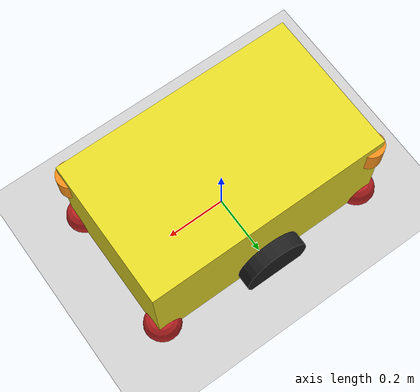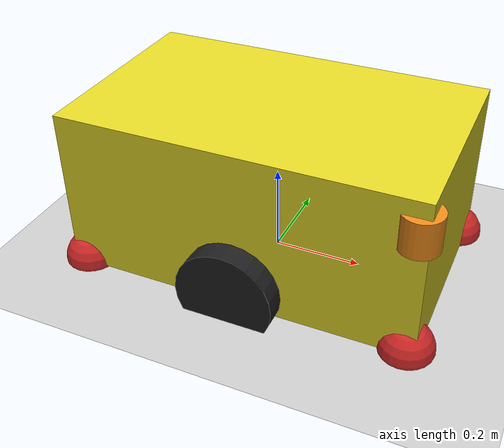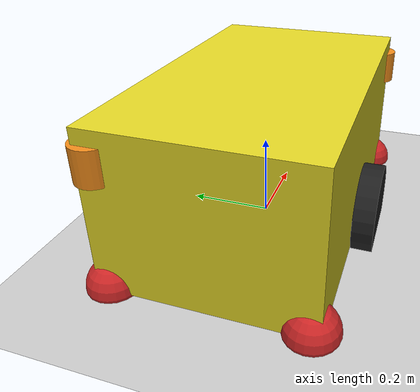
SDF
<sdf version="1.4">
 <world name="default">
  <include><uri>model://ground_plane</uri></include>
  <include><uri>model://sun</uri></include>
  <include><uri>model://delta_amr</uri></include>
 </world>
</sdf>

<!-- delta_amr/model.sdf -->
<sdf version='1.4'>
  <model name="my_robot">

      <link name='base_link'>
        <pose>0 0 0.19 0 0 0</pose>
        <inertial>
          <mass>0.5</mass>
          <inertia>
            <ixx>0.01530416</ixx>
            <ixy>0</ixy>
            <ixz>0</ixz>
            <iyy>0.03237083</iyy>
            <iyz>0</iyz>
            <izz>0.03626666</izz>
          </inertia>
        </inertial>
        <visual name='visual'>
          <geometry>
            <box>
              <size>0.8 0.48 0.37</size>
            </box>
          </geometry>
          <material>
            <script>
               <uri>file://media/materials/scripts/gazebo.material</uri>
               <name>Gazebo/Yellow</name>
            </script>
          </material>
        </visual>
        <collision name='collision'>
          <geometry>
            <box>
              <size>0.8 0.48 0.37</size>
            </box>
          </geometry>
        </collision>
      </link>

      <link name='left_wheel'>
        <pose>0 0.265 0.055 0 1.5707 1.5707</pose>
        <inertial>
          <mass>0.1</mass>
          <inertia>
            <ixx>0.0003233</ixx>
            <ixy>0</ixy>
            <ixz>0</ixz>
            <iyy>0.0003233</iyy>
            <iyz>0</iyz>
            <izz>0.000605</izz>
          </inertia>
        </inertial>
        <visual name='visual'>
          <geometry>
            <cylinder>
              <radius>0.11</radius>
              <length>.05</length>
            </cylinder>
          </geometry>
          <material>
            <script>
               <uri>file://media/materials/scripts/gazebo.material</uri>
               <name>Gazebo/Black</name>
            </script>
          </material>
        </visual>
        <collision name='collision'>
          <geometry>
            <cylinder>
              <radius>0.11</radius>
              <length>.05</length>
            </cylinder>
          </geometry>
          <surface>
            <friction>
              <ode>
                <mu>1</mu>
                <mu2>1</mu2>
                <slip1>0</slip1>
                <slip2>0</slip2>
              </ode>
            </friction>
            <contact>
              <ode>
                <soft_cfm>0</soft_cfm>
                <soft_erp>0.2</soft_erp>
                <kp>1e+13</kp>
                <kd>1</kd>
                <max_vel>0.01</max_vel>
                <min_depth>0.01</min_depth>
              </ode>
            </contact>
          </surface>
        </collision>
      </link>

      <link name='right_wheel'>
        <pose>0 -0.265 0.055 0 1.5707 1.5707</pose>
        <inertial>
          <mass>0.1</mass>
          <inertia>
            <ixx>0.0003233</ixx>
            <ixy>0</ixy>
            <ixz>0</ixz>
            <iyy>0.0003233</iyy>
            <iyz>0</iyz>
            <izz>0.000605</izz>
          </inertia>
        </inertial>
        <visual name='visual'>
          <geometry>
            <cylinder>
              <radius>0.11</radius>
              <length>.05</length>
            </cylinder>
          </geometry>
          <material>
            <script>
               <uri>file://media/materials/scripts/gazebo.material</uri>
               <name>Gazebo/Black</name>
            </script>
          </material>
        </visual>
        <collision name='collision'>
          <geometry>
            <cylinder>
              <radius>0.11</radius>
              <length>.05</length>
            </cylinder>
          </geometry>
          <surface>
            <friction>
              <ode>
                <mu>1</mu>
                <mu2>1</mu2>
                <slip1>0</slip1>
                <slip2>0</slip2>
              </ode>
            </friction>
            <contact>
              <ode>
                <soft_cfm>0</soft_cfm>
                <soft_erp>0.2</soft_erp>
                <kp>1e+13</kp>
                <kd>1</kd>
                <max_vel>0.01</max_vel>
                <min_depth>0.01</min_depth>
              </ode>
            </contact>
          </surface>
        </collision>
      </link>

      <link name='caster1'>
        <pose>0.375 0.215 0.005 0 0 0</pose>
        <inertial>
          <mass>0.1</mass>
          <inertia>
            <ixx>0.000256</ixx>
            <ixy>0</ixy>
            <ixz>0</ixz>
            <iyy>0.000256</iyy>
            <iyz>0</iyz>
            <izz>0.000256</izz>
          </inertia>
        </inertial>
        <visual name='visual'>
          <geometry>
            <sphere>
              <radius>0.06</radius>
            </sphere>
          </geometry>
          <material>
            <script>
               <uri>file://media/materials/scripts/gazebo.material</uri>
               <name>Gazebo/Red</name>
            </script>
          </material>
        </visual>
        <collision name='collision'>
          <geometry>
            <sphere>
              <radius>0.06</radius>
            </sphere>
          </geometry>
        </collision>
      </link>

      <link name='caster2'>
        <pose>-0.375 0.215 0.005 0 0 0</pose>
        <inertial>
          <mass>0.1</mass>
          <inertia>
            <ixx>0.000256</ixx>
            <ixy>0</ixy>
            <ixz>0</ixz>
            <iyy>0.000256</iyy>
            <iyz>0</iyz>
            <izz>0.000256</izz>
          </inertia>
        </inertial>
        <visual name='visual'>
          <geometry>
            <sphere>
              <radius>0.06</radius>
            </sphere>
          </geometry>
          <material>
            <script>
               <uri>file://media/materials/scripts/gazebo.material</uri>
               <name>Gazebo/Red</name>
            </script>
          </material>
        </visual>
        <collision name='collision'>
          <geometry>
            <sphere>
              <radius>0.06</radius>
            </sphere>
          </geometry>
        </collision>
      </link>

      <link name='caster3'>
        <pose>0.375 -0.215 0.005 0 0 0</pose>
        <inertial>
          <mass>0.1</mass>
          <inertia>
            <ixx>0.000256</ixx>
            <ixy>0</ixy>
            <ixz>0</ixz>
            <iyy>0.000256</iyy>
            <iyz>0</iyz>
            <izz>0.000256</izz>
          </inertia>
        </inertial>
        <visual name='visual'>
          <geometry>
            <sphere>
              <radius>0.06</radius>
            </sphere>
          </geometry>
          <material>
            <script>
               <uri>file://media/materials/scripts/gazebo.material</uri>
               <name>Gazebo/Red</name>
            </script>
          </material>
        </visual>
        <collision name='collision'>
          <geometry>
            <sphere>
              <radius>0.06</radius>
            </sphere>
          </geometry>
        </collision>
      </link>

      <link name='caster4'>
        <pose>-0.375 -0.215 0.005 0 0 0</pose>
        <inertial>
          <mass>0.1</mass>
          <inertia>
            <ixx>0.000256</ixx>
            <ixy>0</ixy>
            <ixz>0</ixz>
            <iyy>0.000256</iyy>
            <iyz>0</iyz>
            <izz>0.000256</izz>
          </inertia>
        </inertial>
        <visual name='visual'>
          <geometry>
            <sphere>
              <radius>0.06</radius>
            </sphere>
          </geometry>
          <material>
            <script>
               <uri>file://media/materials/scripts/gazebo.material</uri>
               <name>Gazebo/Red</name>
            </script>
          </material>
        </visual>
        <collision name='collision'>
          <geometry>
            <sphere>
              <radius>0.06</radius>
            </sphere>
          </geometry>
        </collision>
      </link>

      <link name='RF_sick_scanner'>
        <pose>0.375 -0.215 0.3 0 0 -0.7853981634</pose>
        <inertial>
          <mass>0.067</mass>
          <inertia>
            <ixx>6.670408333333333e-05</ixx>
            <ixy>0</ixy>
            <ixz>0</ixz>
            <iyy>6.670408333333333e-05</iyy>
            <iyz>0</iyz>
            <izz>6.194149999999999e-05</izz>
          </inertia>
        </inertial>
        <visual name='visual'>
          <geometry>
            <cylinder>
              <radius>0.043</radius>
              <length>0.08</length>
            </cylinder>
          </geometry>
          <material>
            <script>
               <uri>file://media/materials/scripts/gazebo.material</uri>
               <name>Gazebo/Orange</name>
            </script>
          </material>
        </visual>
        <collision name='collision'>
          <geometry>
            <cylinder>
              <radius>0.043</radius>
              <length>0.08</length>
            </cylinder>
          </geometry>
        </collision>
        <sensor name='RF_sick_scanner' type='ray'>
          <always_on>true</always_on>
          <visualize>true</visualize>
          <pose>0 0 0 0 -0 0</pose>
          <update_rate>10</update_rate>
          <ray>
            <scan>
              <horizontal>
                <samples>1411</samples>
                <resolution>0.17</resolution>
                <min_angle>-2.09</min_angle>
                <max_angle>2.09</max_angle>
              </horizontal>
            </scan>
            <range>
              <min>0.14</min>
              <max>10</max>
              <resolution>0.015</resolution>
            </range>
            <noise>
              <type>gaussian</type>
              <mean>0</mean>
              <stddev>0.01</stddev>
            </noise>
          </ray>
          <plugin name='laserscan_RF' filename='libgazebo_ros_ray_sensor.so'>
            <ros>
              <remapping>~/out:=scan_RF</remapping>
            </ros>
            <output_type>sensor_msgs/LaserScan</output_type>
            <frame_name>scan_RF_link</frame_name>
          </plugin>
        </sensor>
      </link>

      <link name='LB_sick_scanner'>
        <pose>-0.375 0.215 0.3 0 0 2.3561944902</pose>
        <inertial>
          <mass>0.067</mass>
          <inertia>
            <ixx>6.670408333333333e-05</ixx>
            <ixy>0</ixy>
            <ixz>0</ixz>
            <iyy>6.670408333333333e-05</iyy>
            <iyz>0</iyz>
            <izz>6.194149999999999e-05</izz>
          </inertia>
        </inertial>
        <visual name='visual'>
          <geometry>
            <cylinder>
              <radius>0.043</radius>
              <length>0.08</length>
            </cylinder>
          </geometry>
          <material>
            <script>
               <uri>file://media/materials/scripts/gazebo.material</uri>
               <name>Gazebo/Orange</name>
            </script>
          </material>
        </visual>
        <collision name='collision'>
          <geometry>
            <cylinder>
              <radius>0.043</radius>
              <length>0.08</length>
            </cylinder>
          </geometry>
        </collision>
        <sensor name='LB_sick_scanner' type='ray'>
          <always_on>true</always_on>
          <visualize>true</visualize>
          <pose>0 0 0 0 -0 0</pose>
          <update_rate>10</update_rate>
          <ray>
            <scan>
              <horizontal>
                <samples>1411</samples>
                <resolution>0.17</resolution>
                <min_angle>-2.09</min_angle>
                <max_angle>2.09</max_angle>
              </horizontal>
            </scan>
            <range>
              <min>0.14</min>
              <max>10</max>
              <resolution>0.015</resolution>
            </range>
            <noise>
              <type>gaussian</type>
              <mean>0</mean>
              <stddev>0.01</stddev>
            </noise>
          </ray>
          <plugin name='laserscan_LB' filename='libgazebo_ros_ray_sensor.so'>
            <ros>
              <remapping>~/out:=scan_LB</remapping>
            </ros>
            <output_type>sensor_msgs/LaserScan</output_type>
            <frame_name>scan_LB_link</frame_name>
          </plugin>
        </sensor>
      </link>

      <link name="imu_link">
        <sensor name="ch110_imu" type="imu">
          <always_on>true</always_on>
          <update_rate>10</update_rate>
          <imu>
            <angular_velocity>
              <x>
                <noise type="gaussian">
                  <mean>0.0</mean>
                  <stddev>2e-4</stddev>
                </noise>
              </x>
              <y>
                <noise type="gaussian">
                  <mean>0.0</mean>
                  <stddev>2e-4</stddev>
                </noise>
              </y>
              <z>
                <noise type="gaussian">
                  <mean>0.0</mean>
                  <stddev>2e-4</stddev>
                </noise>
              </z>
            </angular_velocity>
            <linear_acceleration>
              <x>
                <noise type="gaussian">
                  <mean>0.0</mean>
                  <stddev>1.7e-2</stddev>
                </noise>
              </x>
            <y>
              <noise type="gaussian">
                <mean>0.0</mean>
                <stddev>1.7e-2</stddev>
              </noise>
              </y>
              <z>
                <noise type="gaussian">
                  <mean>0.0</mean>
                  <stddev>1.7e-2</stddev>
                </noise>
              </z>
            </linear_acceleration>
          </imu>
          <plugin name="ch110_imu" filename="libgazebo_ros_imu_sensor.so">
            <ros>
              <remapping>~/out:=imu</remapping>
              <frame_name>imu_link</frame_name>
            </ros>
          </plugin>
        </sensor>
      </link>

      <joint name='left_wheel_joint' type='revolute'>
        <parent>base_link</parent>
        <child>left_wheel</child>
        <axis>
          <xyz>0 1 0</xyz>
          <limit>
            <lower>-1.79769e+308</lower>
            <upper>1.79769e+308</upper>
          </limit>
        </axis>
      </joint>

      <joint name='right_wheel_joint' type='revolute'>
        <parent>base_link</parent>
        <child>right_wheel</child>
        <axis>
          <xyz>0 1 0</xyz>
          <limit>
            <lower>-1.79769e+308</lower>
            <upper>1.79769e+308</upper>
          </limit>
        </axis>
      </joint>

      <joint name='RF_sick_scanner_joint' type='fixed'>
        <parent>base_link</parent>
        <child>RF_sick_scanner</child>
      </joint>

      <joint name='LB_sick_scanner_joint' type='fixed'>
        <parent>base_link</parent>
        <child>LB_sick_scanner</child>
      </joint>

      <joint name="imu_joint" type="fixed">
        <parent>base_link</parent>
        <child>imu_link</child>
        <pose>0 0 0.15 0 0 0</pose>
        <axis>
          <xyz>0 0 1</xyz>
        </axis>
      </joint>

      <joint name='caster_wheel1' type='ball'>
        <parent>base_link</parent>
        <child>caster1</child>
      </joint>

      <joint name='caster_wheel2' type='ball'>
        <parent>base_link</parent>
        <child>caster2</child>
      </joint>

      <joint name='caster_wheel3' type='ball'>
        <parent>base_link</parent>
        <child>caster3</child>
      </joint>

      <joint name='caster_wheel4' type='ball'>
        <parent>base_link</parent>
        <child>caster4</child>
      </joint>

      <plugin name='diff_drive' filename='libgazebo_ros_diff_drive.so'>

        <ros>
          <namespace>/delta_amr</namespace>
          <remapping>cmd_vel:=cmd_vel</remapping>
          <remapping>odom:=odom</remapping>
        </ros>

        <!-- wheels -->
        <left_joint>left_wheel_joint</left_joint>
        <right_joint>right_wheel_joint</right_joint>

        <!-- kinematics -->
        <wheel_separation>0.53</wheel_separation>
        <wheel_diameter>0.22</wheel_diameter>

        <!-- limits -->
        <max_wheel_torque>20</max_wheel_torque>
        <max_wheel_acceleration>1.0</max_wheel_acceleration>

        <!-- output -->
        <publish_odom>true</publish_odom>
        <publish_odom_tf>true</publish_odom_tf>
        <publish_wheel_tf>true</publish_wheel_tf>

        <odometry_frame>odom</odometry_frame>
        <robot_base_frame>base_link</robot_base_frame>

      </plugin>

  </model>
</sdf>
